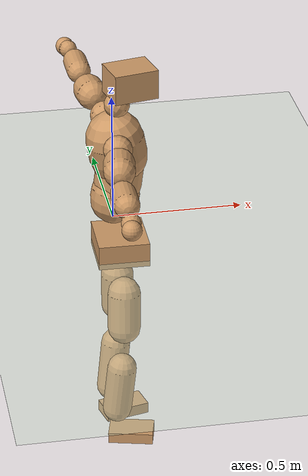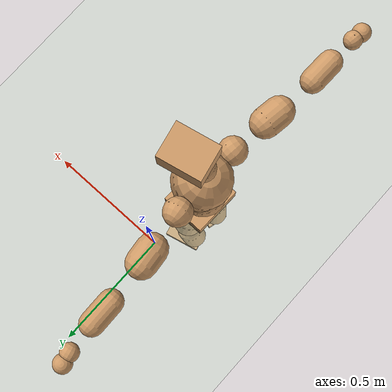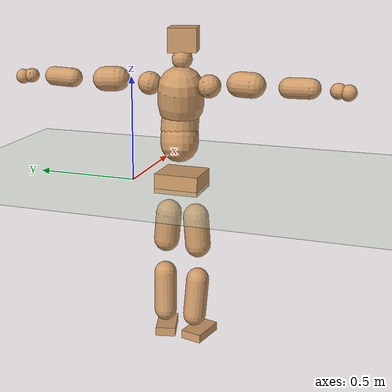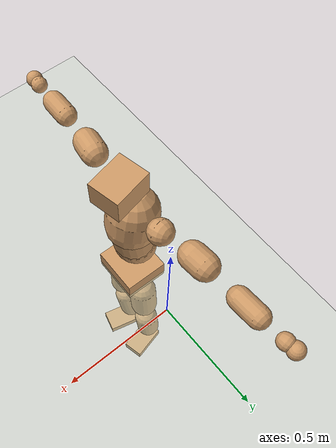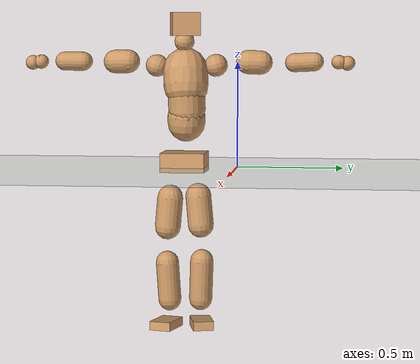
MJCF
<mujoco model="humanoid">
  <compiler coordinate="local" angle="radian"/>
  <default>
    <joint damping="0.0" armature="0.01" stiffness="0.0" limited="true"/>
    <geom conaffinity="1" condim="3" contype="7" margin="0.001" rgba="0.8 0.6 .4 1"/>
  </default>
  <asset>
    <texture type="skybox" builtin="gradient" rgb1=".4 .5 .6" rgb2="0 0 0" width="100" height="100"/>
    <texture builtin="flat" height="1278" mark="cross" markrgb="1 1 1" name="texgeom" random="0.01" rgb1="0.8 0.6 0.4" rgb2="0.8 0.6 0.4" type="cube" width="127"/>
    <texture builtin="checker" height="100" name="texplane" rgb1="0 0 0" rgb2="0.8 0.8 0.8" type="2d" width="100"/>
    <material name="MatPlane" reflectance="0.5" shininess="1" specular="1" texrepeat="60 60" texture="texplane"/>
    <material name="geom" texture="texgeom" texuniform="true"/>
  </asset>
  <worldbody>
    <light cutoff="100" diffuse="1 1 1" dir="-0 0 -1.3" directional="true" exponent="1" pos="0 0 1.3" specular=".1 .1 .1"/>
    <geom conaffinity="1" condim="3" name="floor" pos="0 0 0" rgba="0.8 0.9 0.8 1" size="100 100 .2" type="plane" material="MatPlane"/>
    <body name="Pelvis" pos="-0.0043 -0.2565 0.0301">
      <freejoint name="Pelvis"/>
      <geom type="box" contype="1" conaffinity="1" density="5359.375061" pos="-0.0102 0.0002 -0.0078" size="0.0951 0.105 0.0461" quat="1.0000 0.0000 0.0000 -0.0074" name="Pelvis"/>
      <body name="L_Hip" pos="-0.0139 0.058 -0.0815">
        <joint name="L_Hip_x" type="hinge" pos="0 0 0" axis="1 0 0" stiffness="1600" damping="160" armature="0.02" range="-180.0000 180.0000"/>
        <joint name="L_Hip_y" type="hinge" pos="0 0 0" axis="0 1 0" stiffness="1600" damping="160" armature="0.02" range="-180.0000 180.0000"/>
        <joint name="L_Hip_z" type="hinge" pos="0 0 0" axis="0 0 1" stiffness="1600" damping="160" armature="0.02" range="-180.0000 180.0000"/>
        <geom type="capsule" contype="1" conaffinity="1" density="2040.816327" size="0.0615" fromto="0.0013 0.0081 -0.0911 0.0034 0.0204 -0.2300" name="L_Hip"/>
        <body name="L_Knee" pos="0.0048 0.0285 -0.3211">
          <joint name="L_Knee_x" type="hinge" pos="0 0 0" axis="1 0 0" stiffness="1600" damping="160" armature="0.02" range="-180.0000 180.0000"/>
          <joint name="L_Knee_y" type="hinge" pos="0 0 0" axis="0 1 0" stiffness="1600" damping="160" armature="0.02" range="-180.0000 180.0000"/>
          <joint name="L_Knee_z" type="hinge" pos="0 0 0" axis="0 0 1" stiffness="1600" damping="160" armature="0.02" range="-180.0000 180.0000"/>
          <geom type="capsule" contype="1" conaffinity="1" density="1234.567901" size="0.0552" fromto="-0.0093 -0.0038 -0.0846 -0.0299 -0.0121 -0.2732" name="L_Knee"/>
          <body name="L_Ankle" pos="-0.0391 -0.0159 -0.3578">
            <joint name="L_Ankle_x" type="hinge" pos="0 0 0" axis="1 0 0" stiffness="1600" damping="160" armature="0.02" range="-180.0000 180.0000"/>
            <joint name="L_Ankle_y" type="hinge" pos="0 0 0" axis="0 1 0" stiffness="1600" damping="160" armature="0.02" range="-180.0000 180.0000"/>
            <joint name="L_Ankle_z" type="hinge" pos="0 0 0" axis="0 0 1" stiffness="1600" damping="160" armature="0.02" range="-180.0000 180.0000"/>
            <geom type="box" contype="1" conaffinity="1" density="999.99995" pos="0.0575 0.0137 -0.0262" size="0.0852 0.0488 0.0216" quat="0.9931 0.0000 0.0000 0.1170" name="L_Ankle"/>
            <body name="L_Toe" pos="0.115 0.0275 -0.0523">
              <joint name="L_Toe_x" type="hinge" pos="0 0 0" axis="1 0 0" stiffness="1000" damping="100" armature="0.02" range="-180.0000 180.0000"/>
              <joint name="L_Toe_y" type="hinge" pos="0 0 0" axis="0 1 0" stiffness="1000" damping="100" armature="0.02" range="-180.0000 180.0000"/>
              <joint name="L_Toe_z" type="hinge" pos="0 0 0" axis="0 0 1" stiffness="1000" damping="100" armature="0.02" range="-180.0000 180.0000"/>
              <geom type="box" contype="1" conaffinity="1" density="8300970.842442" pos="0.0000 0.0000 0.0258" size="0.0011 0.0025 0.0011" quat="0.9924 0.0000 0.0000 0.1231" name="L_Toe"/>
            </body>
          </body>
        </body>
      </body>
      <body name="R_Hip" pos="-0.0072 -0.0613 -0.0906">
        <joint name="R_Hip_x" type="hinge" pos="0 0 0" axis="1 0 0" stiffness="1600" damping="160" armature="0.02" range="-180.0000 180.0000"/>
        <joint name="R_Hip_y" type="hinge" pos="0 0 0" axis="0 1 0" stiffness="1600" damping="160" armature="0.02" range="-180.0000 180.0000"/>
        <joint name="R_Hip_z" type="hinge" pos="0 0 0" axis="0 0 1" stiffness="1600" damping="160" armature="0.02" range="-180.0000 180.0000"/>
        <geom type="capsule" contype="1" conaffinity="1" density="2040.816327" size="0.0615" fromto="-0.0018 -0.0081 -0.0911 -0.0046 -0.0207 -0.2320" name="R_Hip"/>
        <body name="R_Knee" pos="-0.0064 -0.0289 -0.3231">
          <joint name="R_Knee_x" type="hinge" pos="0 0 0" axis="1 0 0" stiffness="1600" damping="160" armature="0.02" range="-180.0000 180.0000"/>
          <joint name="R_Knee_y" type="hinge" pos="0 0 0" axis="0 1 0" stiffness="1600" damping="160" armature="0.02" range="-180.0000 180.0000"/>
          <joint name="R_Knee_z" type="hinge" pos="0 0 0" axis="0 0 1" stiffness="1600" damping="160" armature="0.02" range="-180.0000 180.0000"/>
          <geom type="capsule" contype="1" conaffinity="1" density="1234.567901" size="0.0552" fromto="-0.0086 0.0044 -0.0847 -0.0271 0.0139 -0.2672" name="R_Knee"/>
          <body name="R_Ankle" pos="-0.0357 0.0183 -0.3519">
            <joint name="R_Ankle_x" type="hinge" pos="0 0 0" axis="1 0 0" stiffness="1600" damping="160" armature="0.02" range="-180.0000 180.0000"/>
            <joint name="R_Ankle_y" type="hinge" pos="0 0 0" axis="0 1 0" stiffness="1600" damping="160" armature="0.02" range="-180.0000 180.0000"/>
            <joint name="R_Ankle_z" type="hinge" pos="0 0 0" axis="0 0 1" stiffness="1600" damping="160" armature="0.02" range="-180.0000 180.0000"/>
            <geom type="box" contype="1" conaffinity="1" density="999.99995" pos="0.0612 -0.0155 -0.0266" size="0.0848 0.052 0.0211" quat="0.9923 0.0000 0.0000 -0.1235" name="R_Ankle"/>
            <body name="R_Toe" pos="0.1224 -0.0309 -0.0533">
              <joint name="R_Toe_x" type="hinge" pos="0 0 0" axis="1 0 0" stiffness="1000" damping="100" armature="0.02" range="-180.0000 180.0000"/>
              <joint name="R_Toe_y" type="hinge" pos="0 0 0" axis="0 1 0" stiffness="1000" damping="100" armature="0.02" range="-180.0000 180.0000"/>
              <joint name="R_Toe_z" type="hinge" pos="0 0 0" axis="0 0 1" stiffness="1000" damping="100" armature="0.02" range="-180.0000 180.0000"/>
              <geom type="box" contype="1" conaffinity="1" density="7644757.275242" pos="0.0000 0.0000 0.0276" size="0.0012 0.0026 0.0011" quat="0.9935 0.0000 0.0000 -0.1141" name="R_Toe"/>
            </body>
          </body>
        </body>
      </body>
      <body name="Torso" pos="-0.04 0.0042 0.1255">
        <joint name="Torso_x" type="hinge" pos="0 0 0" axis="1 0 0" stiffness="2000" damping="200" armature="0.02" range="-180.0000 180.0000"/>
        <joint name="Torso_y" type="hinge" pos="0 0 0" axis="0 1 0" stiffness="2000" damping="200" armature="0.02" range="-180.0000 180.0000"/>
        <joint name="Torso_z" type="hinge" pos="0 0 0" axis="0 0 1" stiffness="2000" damping="200" armature="0.02" range="-180.0000 180.0000"/>
        <geom type="capsule" contype="1" conaffinity="1" density="2040.816327" size="0.09" fromto="0.0167 0.0038 0.0884 0.0101 0.0023 0.0534" name="Torso"/>
        <body name="Spine" pos="0.0268 0.0061 0.1418">
          <joint name="Spine_x" type="hinge" pos="0 0 0" axis="1 0 0" stiffness="2000" damping="200" armature="0.02" range="-180.0000 180.0000"/>
          <joint name="Spine_y" type="hinge" pos="0 0 0" axis="0 1 0" stiffness="2000" damping="200" armature="0.02" range="-180.0000 180.0000"/>
          <joint name="Spine_z" type="hinge" pos="0 0 0" axis="0 0 1" stiffness="2000" damping="200" armature="0.02" range="-180.0000 180.0000"/>
          <geom type="capsule" contype="1" conaffinity="1" density="2040.816327" size="0.0882" fromto="0.0106 -0.0026 0.0876 -0.0037 0.0009 -0.0305" name="Spine"/>
          <body name="Chest" pos="0.0069 -0.0017 0.057">
            <joint name="Chest_x" type="hinge" pos="0 0 0" axis="1 0 0" stiffness="2000" damping="200" armature="0.02" range="-180.0000 180.0000"/>
            <joint name="Chest_y" type="hinge" pos="0 0 0" axis="0 1 0" stiffness="2000" damping="200" armature="0.02" range="-180.0000 180.0000"/>
            <joint name="Chest_z" type="hinge" pos="0 0 0" axis="0 0 1" stiffness="2000" damping="200" armature="0.02" range="-180.0000 180.0000"/>
            <geom type="capsule" contype="1" conaffinity="1" density="2040.816327" size="0.1072" fromto="-0.0204 -0.0065 0.1051 -0.0066 -0.0021 0.0338" name="Chest"/>
            <body name="Neck" pos="-0.0367 -0.0144 0.2008">
              <joint name="Neck_x" type="hinge" pos="0 0 0" axis="1 0 0" stiffness="1000" damping="100" armature="0.02" range="-180.0000 180.0000"/>
              <joint name="Neck_y" type="hinge" pos="0 0 0" axis="0 1 0" stiffness="1000" damping="100" armature="0.02" range="-180.0000 180.0000"/>
              <joint name="Neck_z" type="hinge" pos="0 0 0" axis="0 0 1" stiffness="1000" damping="100" armature="0.02" range="-180.0000 180.0000"/>
              <geom type="capsule" contype="1" conaffinity="1" density="1000" size="0.0471" fromto="0.0244 0.0044 0.0404 0.0255 0.0046 0.0421" name="Neck"/>
              <body name="Head" pos="0.0499 0.0091 0.0825">
                <joint name="Head_x" type="hinge" pos="0 0 0" axis="1 0 0" stiffness="1000" damping="100" armature="0.02" range="-180.0000 180.0000"/>
                <joint name="Head_y" type="hinge" pos="0 0 0" axis="0 1 0" stiffness="1000" damping="100" armature="0.02" range="-180.0000 180.0000"/>
                <joint name="Head_z" type="hinge" pos="0 0 0" axis="0 0 1" stiffness="1000" damping="100" armature="0.02" range="-180.0000 180.0000"/>
                <geom type="box" contype="1" conaffinity="1" density="2250.000097" pos="0.0260 0.0055 0.0422" size="0.0825 0.066 0.055" quat="0.9945 0.0000 0.0000 0.1050" name="Head"/>
              </body>
            </body>
            <body name="L_Thorax" pos="-0.0198 0.0744 0.1087">
              <joint name="L_Thorax_x" type="hinge" pos="0 0 0" axis="1 0 0" stiffness="1000" damping="100" armature="0.02" range="-180.0000 180.0000"/>
              <joint name="L_Thorax_y" type="hinge" pos="0 0 0" axis="0 1 0" stiffness="1000" damping="100" armature="0.02" range="-180.0000 180.0000"/>
              <joint name="L_Thorax_z" type="hinge" pos="0 0 0" axis="0 0 1" stiffness="1000" damping="100" armature="0.02" range="-180.0000 180.0000"/>
              <geom type="capsule" contype="1" conaffinity="1" density="1000" size="0.0538" fromto="-0.0131 0.0643 0.0195 -0.0134 0.0662 0.0200" name="L_Thorax"/>
              <body name="L_Shoulder" pos="-0.0265 0.1305 0.0395">
                <joint name="L_Shoulder_x" type="hinge" pos="0 0 0" axis="1 0 0" stiffness="1000" damping="100" armature="0.02" range="-720.0000 720.0000"/>
                <joint name="L_Shoulder_y" type="hinge" pos="0 0 0" axis="0 1 0" stiffness="1000" damping="100" armature="0.02" range="-720.0000 720.0000"/>
                <joint name="L_Shoulder_z" type="hinge" pos="0 0 0" axis="0 0 1" stiffness="1000" damping="100" armature="0.02" range="-720.0000 720.0000"/>
                <geom type="capsule" contype="1" conaffinity="1" density="1000" size="0.057" fromto="-0.0088 0.0865 -0.0039 -0.0147 0.1454 -0.0065" name="L_Shoulder"/>
                <body name="L_Elbow" pos="-0.0235 0.2319 -0.0104">
                  <joint name="L_Elbow_x" type="hinge" pos="0 0 0" axis="1 0 0" stiffness="1000" damping="100" armature="0.02" range="-720.0000 720.0000"/>
                  <joint name="L_Elbow_y" type="hinge" pos="0 0 0" axis="0 1 0" stiffness="1000" damping="100" armature="0.02" range="-720.0000 720.0000"/>
                  <joint name="L_Elbow_z" type="hinge" pos="0 0 0" axis="0 0 1" stiffness="1000" damping="100" armature="0.02" range="-720.0000 720.0000"/>
                  <geom type="capsule" contype="1" conaffinity="1" density="1000" size="0.0446" fromto="-0.0020 0.0745 0.0035 -0.0045 0.1688 0.0079" name="L_Elbow"/>
                  <body name="L_Wrist" pos="-0.0065 0.2433 0.0114">
                    <joint name="L_Wrist_x" type="hinge" pos="0 0 0" axis="1 0 0" stiffness="600" damping="60" armature="0.02" range="-180.0000 180.0000"/>
                    <joint name="L_Wrist_y" type="hinge" pos="0 0 0" axis="0 1 0" stiffness="600" damping="60" armature="0.02" range="-180.0000 180.0000"/>
                    <joint name="L_Wrist_z" type="hinge" pos="0 0 0" axis="0 0 1" stiffness="600" damping="60" armature="0.02" range="-180.0000 180.0000"/>
                    <geom type="capsule" contype="1" conaffinity="1" density="1000" size="0.0338" fromto="-0.0071 0.0408 -0.0051 -0.0075 0.0428 -0.0053" name="L_Wrist"/>
                    <body name="L_Hand" pos="-0.0146 0.0836 -0.0104">
                      <joint name="L_Hand_x" type="hinge" pos="0 0 0" axis="1 0 0" stiffness="600" damping="60" armature="0.02" range="-180.0000 180.0000"/>
                      <joint name="L_Hand_y" type="hinge" pos="0 0 0" axis="0 1 0" stiffness="600" damping="60" armature="0.02" range="-180.0000 180.0000"/>
                      <joint name="L_Hand_z" type="hinge" pos="0 0 0" axis="0 0 1" stiffness="600" damping="60" armature="0.02" range="-180.0000 180.0000"/>
                      <geom type="sphere" contype="1" conaffinity="1" density="1000" size="0.0347" pos="0.0000 0.0000 0.0000" name="L_Hand"/>
                    </body>
                  </body>
                </body>
              </body>
            </body>
            <body name="R_Thorax" pos="-0.0246 -0.0856 0.1072">
              <joint name="R_Thorax_x" type="hinge" pos="0 0 0" axis="1 0 0" stiffness="1000" damping="100" armature="0.02" range="-180.0000 180.0000"/>
              <joint name="R_Thorax_y" type="hinge" pos="0 0 0" axis="0 1 0" stiffness="1000" damping="100" armature="0.02" range="-180.0000 180.0000"/>
              <joint name="R_Thorax_z" type="hinge" pos="0 0 0" axis="0 0 1" stiffness="1000" damping="100" armature="0.02" range="-180.0000 180.0000"/>
              <geom type="capsule" contype="1" conaffinity="1" density="1000" size="0.053" fromto="-0.0067 -0.0578 0.0194 -0.0070 -0.0596 0.0200" name="R_Thorax"/>
              <body name="R_Shoulder" pos="-0.0137 -0.1174 0.0394">
                <joint name="R_Shoulder_x" type="hinge" pos="0 0 0" axis="1 0 0" stiffness="1000" damping="100" armature="0.02" range="-720.0000 720.0000"/>
                <joint name="R_Shoulder_y" type="hinge" pos="0 0 0" axis="0 1 0" stiffness="1000" damping="100" armature="0.02" range="-720.0000 720.0000"/>
                <joint name="R_Shoulder_z" type="hinge" pos="0 0 0" axis="0 0 1" stiffness="1000" damping="100" armature="0.02" range="-720.0000 720.0000"/>
                <geom type="capsule" contype="1" conaffinity="1" density="1000" size="0.0565" fromto="-0.0128 -0.0856 -0.0008 -0.0222 -0.1488 -0.0015" name="R_Shoulder"/>
                <body name="R_Elbow" pos="-0.035 -0.2344 -0.0023">
                  <joint name="R_Elbow_x" type="hinge" pos="0 0 0" axis="1 0 0" stiffness="1000" damping="100" armature="0.02" range="-720.0000 720.0000"/>
                  <joint name="R_Elbow_y" type="hinge" pos="0 0 0" axis="0 1 0" stiffness="1000" damping="100" armature="0.02" range="-720.0000 720.0000"/>
                  <joint name="R_Elbow_z" type="hinge" pos="0 0 0" axis="0 0 1" stiffness="1000" damping="100" armature="0.02" range="-720.0000 720.0000"/>
                  <geom type="capsule" contype="1" conaffinity="1" density="1000" size="0.0452" fromto="-0.0016 -0.0752 0.0009 -0.0036 -0.1666 0.0021" name="R_Elbow"/>
                  <body name="R_Wrist" pos="-0.0052 -0.2418 0.003">
                    <joint name="R_Wrist_x" type="hinge" pos="0 0 0" axis="1 0 0" stiffness="600" damping="60" armature="0.02" range="-180.0000 180.0000"/>
                    <joint name="R_Wrist_y" type="hinge" pos="0 0 0" axis="0 1 0" stiffness="600" damping="60" armature="0.02" range="-180.0000 180.0000"/>
                    <joint name="R_Wrist_z" type="hinge" pos="0 0 0" axis="0 0 1" stiffness="600" damping="60" armature="0.02" range="-180.0000 180.0000"/>
                    <geom type="capsule" contype="1" conaffinity="1" density="1000" size="0.0344" fromto="-0.0045 -0.0415 -0.0042 -0.0048 -0.0435 -0.0044" name="R_Wrist"/>
                    <body name="R_Hand" pos="-0.0093 -0.085 -0.0086">
                      <joint name="R_Hand_x" type="hinge" pos="0 0 0" axis="1 0 0" stiffness="600" damping="60" armature="0.02" range="-180.0000 180.0000"/>
                      <joint name="R_Hand_y" type="hinge" pos="0 0 0" axis="0 1 0" stiffness="600" damping="60" armature="0.02" range="-180.0000 180.0000"/>
                      <joint name="R_Hand_z" type="hinge" pos="0 0 0" axis="0 0 1" stiffness="600" damping="60" armature="0.02" range="-180.0000 180.0000"/>
                      <geom type="sphere" contype="1" conaffinity="1" density="1000" size="0.0349" pos="0.0000 0.0000 0.0000" name="R_Hand"/>
                    </body>
                  </body>
                </body>
              </body>
            </body>
          </body>
        </body>
      </body>
    </body>
  </worldbody>
  <actuator>
    <motor name="L_Hip_x" joint="L_Hip_x" gear="500"/>
    <motor name="L_Hip_y" joint="L_Hip_y" gear="500"/>
    <motor name="L_Hip_z" joint="L_Hip_z" gear="500"/>
    <motor name="L_Knee_x" joint="L_Knee_x" gear="500"/>
    <motor name="L_Knee_y" joint="L_Knee_y" gear="500"/>
    <motor name="L_Knee_z" joint="L_Knee_z" gear="500"/>
    <motor name="L_Ankle_x" joint="L_Ankle_x" gear="500"/>
    <motor name="L_Ankle_y" joint="L_Ankle_y" gear="500"/>
    <motor name="L_Ankle_z" joint="L_Ankle_z" gear="500"/>
    <motor name="L_Toe_x" joint="L_Toe_x" gear="500"/>
    <motor name="L_Toe_y" joint="L_Toe_y" gear="500"/>
    <motor name="L_Toe_z" joint="L_Toe_z" gear="500"/>
    <motor name="R_Hip_x" joint="R_Hip_x" gear="500"/>
    <motor name="R_Hip_y" joint="R_Hip_y" gear="500"/>
    <motor name="R_Hip_z" joint="R_Hip_z" gear="500"/>
    <motor name="R_Knee_x" joint="R_Knee_x" gear="500"/>
    <motor name="R_Knee_y" joint="R_Knee_y" gear="500"/>
    <motor name="R_Knee_z" joint="R_Knee_z" gear="500"/>
    <motor name="R_Ankle_x" joint="R_Ankle_x" gear="500"/>
    <motor name="R_Ankle_y" joint="R_Ankle_y" gear="500"/>
    <motor name="R_Ankle_z" joint="R_Ankle_z" gear="500"/>
    <motor name="R_Toe_x" joint="R_Toe_x" gear="500"/>
    <motor name="R_Toe_y" joint="R_Toe_y" gear="500"/>
    <motor name="R_Toe_z" joint="R_Toe_z" gear="500"/>
    <motor name="Torso_x" joint="Torso_x" gear="500"/>
    <motor name="Torso_y" joint="Torso_y" gear="500"/>
    <motor name="Torso_z" joint="Torso_z" gear="500"/>
    <motor name="Spine_x" joint="Spine_x" gear="500"/>
    <motor name="Spine_y" joint="Spine_y" gear="500"/>
    <motor name="Spine_z" joint="Spine_z" gear="500"/>
    <motor name="Chest_x" joint="Chest_x" gear="500"/>
    <motor name="Chest_y" joint="Chest_y" gear="500"/>
    <motor name="Chest_z" joint="Chest_z" gear="500"/>
    <motor name="Neck_x" joint="Neck_x" gear="500"/>
    <motor name="Neck_y" joint="Neck_y" gear="500"/>
    <motor name="Neck_z" joint="Neck_z" gear="500"/>
    <motor name="Head_x" joint="Head_x" gear="500"/>
    <motor name="Head_y" joint="Head_y" gear="500"/>
    <motor name="Head_z" joint="Head_z" gear="500"/>
    <motor name="L_Thorax_x" joint="L_Thorax_x" gear="500"/>
    <motor name="L_Thorax_y" joint="L_Thorax_y" gear="500"/>
    <motor name="L_Thorax_z" joint="L_Thorax_z" gear="500"/>
    <motor name="L_Shoulder_x" joint="L_Shoulder_x" gear="500"/>
    <motor name="L_Shoulder_y" joint="L_Shoulder_y" gear="500"/>
    <motor name="L_Shoulder_z" joint="L_Shoulder_z" gear="500"/>
    <motor name="L_Elbow_x" joint="L_Elbow_x" gear="500"/>
    <motor name="L_Elbow_y" joint="L_Elbow_y" gear="500"/>
    <motor name="L_Elbow_z" joint="L_Elbow_z" gear="500"/>
    <motor name="L_Wrist_x" joint="L_Wrist_x" gear="500"/>
    <motor name="L_Wrist_y" joint="L_Wrist_y" gear="500"/>
    <motor name="L_Wrist_z" joint="L_Wrist_z" gear="500"/>
    <motor name="L_Hand_x" joint="L_Hand_x" gear="500"/>
    <motor name="L_Hand_y" joint="L_Hand_y" gear="500"/>
    <motor name="L_Hand_z" joint="L_Hand_z" gear="500"/>
    <motor name="R_Thorax_x" joint="R_Thorax_x" gear="500"/>
    <motor name="R_Thorax_y" joint="R_Thorax_y" gear="500"/>
    <motor name="R_Thorax_z" joint="R_Thorax_z" gear="500"/>
    <motor name="R_Shoulder_x" joint="R_Shoulder_x" gear="500"/>
    <motor name="R_Shoulder_y" joint="R_Shoulder_y" gear="500"/>
    <motor name="R_Shoulder_z" joint="R_Shoulder_z" gear="500"/>
    <motor name="R_Elbow_x" joint="R_Elbow_x" gear="500"/>
    <motor name="R_Elbow_y" joint="R_Elbow_y" gear="500"/>
    <motor name="R_Elbow_z" joint="R_Elbow_z" gear="500"/>
    <motor name="R_Wrist_x" joint="R_Wrist_x" gear="500"/>
    <motor name="R_Wrist_y" joint="R_Wrist_y" gear="500"/>
    <motor name="R_Wrist_z" joint="R_Wrist_z" gear="500"/>
    <motor name="R_Hand_x" joint="R_Hand_x" gear="500"/>
    <motor name="R_Hand_y" joint="R_Hand_y" gear="500"/>
    <motor name="R_Hand_z" joint="R_Hand_z" gear="500"/>
  </actuator>
  <contact>
    <exclude body1="Torso" body2="Chest"/>
    <exclude body1="Head" body2="Chest"/>
    <exclude body1="R_Knee" body2="R_Toe"/>
    <exclude body1="R_Knee" body2="L_Ankle"/>
    <exclude body1="R_Knee" body2="L_Toe"/>
    <exclude body1="L_Knee" body2="L_Toe"/>
    <exclude body1="L_Knee" body2="R_Ankle"/>
    <exclude body1="L_Knee" body2="R_Toe"/>
    <exclude body1="L_Shoulder" body2="Chest"/>
    <exclude body1="R_Shoulder" body2="Chest"/>
  </contact>
  <sensor/>
  <size njmax="700" nconmax="700"/>
</mujoco>
